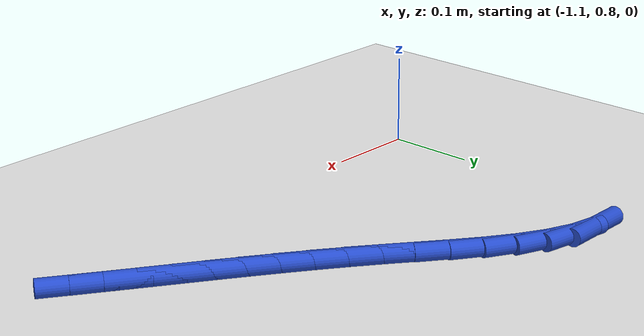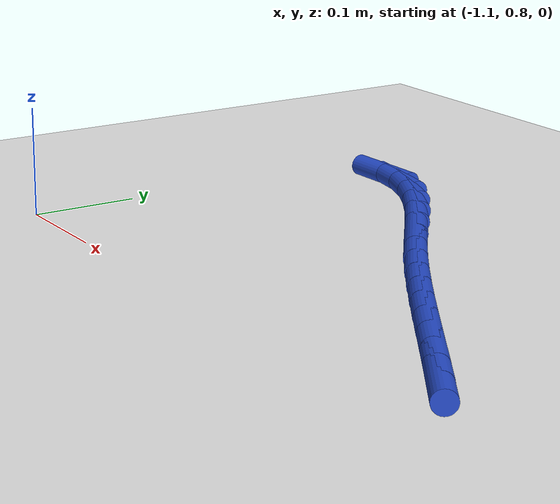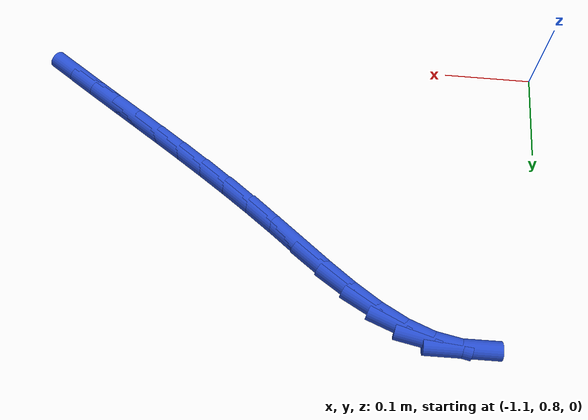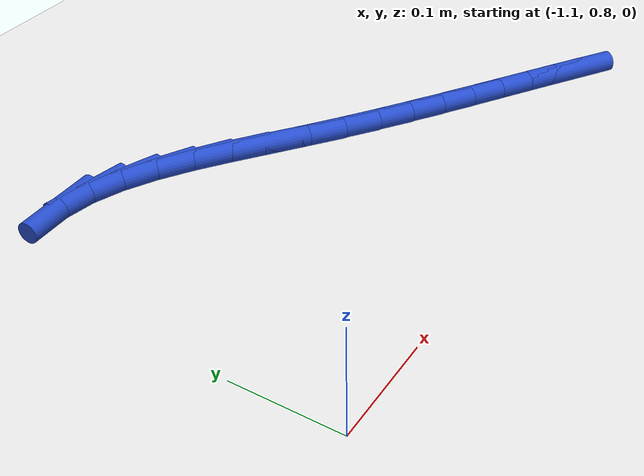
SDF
<sdf version="1.6">
 <world name="default">
  <model name="ground_plane">
   <static>1</static>
   <link name="link">
    <collision name="collision">
     <geometry><plane><normal>0 0 1</normal><size>100 100</size></plane></geometry>
     <surface><friction><ode><mu>100</mu><mu2>50</mu2></ode></friction></surface>
    </collision>
    <visual name="visual">
     <cast_shadows>0</cast_shadows>
     <geometry><plane><normal>0 0 1</normal><size>100 100</size></plane></geometry>
     <material>
      <script><uri>file://media/materials/scripts/gazebo.material</uri><name>Gazebo/WhiteGlow</name></script>
     </material>
    </visual>
   </link>
  </model>
  <model name="line">
   <link name="link_32">
    <pose>-0.5679391808949069 0.8497699829107975 0.01 0 1.57 -0.58621183312326</pose>
    <collision name="collision">
     <geometry><cylinder><radius>0.01</radius><length>0.08</length></cylinder></geometry>
    </collision>
    <visual name="visual">
     <material>
      <script><name>Gazebo/Blue</name><uri>file://media/materials/scripts/gazebo.material</uri></script>
     </material>
     <geometry><cylinder><radius>0.01</radius><length>0.08</length></cylinder></geometry>
    </visual>
   </link>
   <link name="link_33">
    <pose>-0.5951293443169947 0.8678265103797044 0.01 0 1.57 -0.5802576577408157</pose>
    <collision name="collision">
     <geometry><cylinder><radius>0.01</radius><length>0.08</length></cylinder></geometry>
    </collision>
    <visual name="visual">
     <material>
      <script><name>Gazebo/Blue</name><uri>file://media/materials/scripts/gazebo.material</uri></script>
     </material>
     <geometry><cylinder><radius>0.01</radius><length>0.08</length></cylinder></geometry>
    </visual>
   </link>
   <link name="link_34">
    <pose>-0.6224427130974622 0.8857314278503656 0.01 0 1.57 -0.5780383491943036</pose>
    <collision name="collision">
     <geometry><cylinder><radius>0.01</radius><length>0.08</length></cylinder></geometry>
    </collision>
    <visual name="visual">
     <material>
      <script><name>Gazebo/Blue</name><uri>file://media/materials/scripts/gazebo.material</uri></script>
     </material>
     <geometry><cylinder><radius>0.01</radius><length>0.08</length></cylinder></geometry>
    </visual>
   </link>
   <link name="link_35">
    <pose>-0.6498782531871893 0.9036295062240172 0.01 0 1.57 -0.579536351483204</pose>
    <collision name="collision">
     <geometry><cylinder><radius>0.01</radius><length>0.08</length></cylinder></geometry>
    </collision>
    <visual name="visual">
     <material>
      <script><name>Gazebo/Blue</name><uri>file://media/materials/scripts/gazebo.material</uri></script>
     </material>
     <geometry><cylinder><radius>0.01</radius><length>0.08</length></cylinder></geometry>
    </visual>
   </link>
   <link name="link_36">
    <pose>-0.677434930537056 0.9216655164018948 0.01 0 1.57 -0.584681567155481</pose>
    <collision name="collision">
     <geometry><cylinder><radius>0.01</radius><length>0.08</length></cylinder></geometry>
    </collision>
    <visual name="visual">
     <material>
      <script><name>Gazebo/Blue</name><uri>file://media/materials/scripts/gazebo.material</uri></script>
     </material>
     <geometry><cylinder><radius>0.01</radius><length>0.08</length></cylinder></geometry>
    </visual>
   </link>
   <link name="link_37">
    <pose>-0.7051117110979419 0.9399842292852337 0.01 0 1.57 -0.5933538135637033</pose>
    <collision name="collision">
     <geometry><cylinder><radius>0.01</radius><length>0.08</length></cylinder></geometry>
    </collision>
    <visual name="visual">
     <material>
      <script><name>Gazebo/Blue</name><uri>file://media/materials/scripts/gazebo.material</uri></script>
     </material>
     <geometry><cylinder><radius>0.01</radius><length>0.08</length></cylinder></geometry>
    </visual>
   </link>
   <link name="link_38">
    <pose>-0.7329075608207278 0.9587304157752703 0.01 0 1.57 -0.6053856303098277</pose>
    <collision name="collision">
     <geometry><cylinder><radius>0.01</radius><length>0.08</length></cylinder></geometry>
    </collision>
    <visual name="visual">
     <material>
      <script><name>Gazebo/Blue</name><uri>file://media/materials/scripts/gazebo.material</uri></script>
     </material>
     <geometry><cylinder><radius>0.01</radius><length>0.08</length></cylinder></geometry>
    </visual>
   </link>
   <link name="link_39">
    <pose>-0.7608214456562933 0.9780488467732402 0.01 0 1.57 -0.6205656041561253</pose>
    <collision name="collision">
     <geometry><cylinder><radius>0.01</radius><length>0.08</length></cylinder></geometry>
    </collision>
    <visual name="visual">
     <material>
      <script><name>Gazebo/Blue</name><uri>file://media/materials/scripts/gazebo.material</uri></script>
     </material>
     <geometry><cylinder><radius>0.01</radius><length>0.08</length></cylinder></geometry>
    </visual>
   </link>
   <link name="link_40">
    <pose>-0.7888523315555183 0.9980842931803787 0.01 0 1.57 -0.6386424512458385</pose>
    <collision name="collision">
     <geometry><cylinder><radius>0.01</radius><length>0.08</length></cylinder></geometry>
    </collision>
    <visual name="visual">
     <material>
      <script><name>Gazebo/Blue</name><uri>file://media/materials/scripts/gazebo.material</uri></script>
     </material>
     <geometry><cylinder><radius>0.01</radius><length>0.08</length></cylinder></geometry>
    </visual>
   </link>
   <link name="link_41">
    <pose>-0.816999184469283 1.0189815258979222 0.01 0 1.57 -0.6575045595633787</pose>
    <collision name="collision">
     <geometry><cylinder><radius>0.01</radius><length>0.08</length></cylinder></geometry>
    </collision>
    <visual name="visual">
     <material>
      <script><name>Gazebo/Blue</name><uri>file://media/materials/scripts/gazebo.material</uri></script>
     </material>
     <geometry><cylinder><radius>0.01</radius><length>0.08</length></cylinder></geometry>
    </visual>
   </link>
   <link name="link_42">
    <pose>-0.8452613478158196 1.0408031405037799 0.01 0 1.57 -0.6597538097990658</pose>
    <collision name="collision">
     <geometry><cylinder><radius>0.01</radius><length>0.08</length></cylinder></geometry>
    </collision>
    <visual name="visual">
     <material>
      <script><name>Gazebo/Blue</name><uri>file://media/materials/scripts/gazebo.material</uri></script>
     </material>
     <geometry><cylinder><radius>0.01</radius><length>0.08</length></cylinder></geometry>
    </visual>
   </link>
   <link name="link_43">
    <pose>-0.873641810225049 1.0628181634186311 0.01 0 1.57 -0.6357151832701613</pose>
    <collision name="collision">
     <geometry><cylinder><radius>0.01</radius><length>0.08</length></cylinder></geometry>
    </collision>
    <visual name="visual">
     <material>
      <script><name>Gazebo/Blue</name><uri>file://media/materials/scripts/gazebo.material</uri></script>
     </material>
     <geometry><cylinder><radius>0.01</radius><length>0.08</length></cylinder></geometry>
    </visual>
   </link>
   <link name="link_44">
    <pose>-0.9021456015183954 1.08385124999183 0.01 0 1.57 -0.5827325616523604</pose>
    <collision name="collision">
     <geometry><cylinder><radius>0.01</radius><length>0.08</length></cylinder></geometry>
    </collision>
    <visual name="visual">
     <material>
      <script><name>Gazebo/Blue</name><uri>file://media/materials/scripts/gazebo.material</uri></script>
     </material>
     <geometry><cylinder><radius>0.01</radius><length>0.08</length></cylinder></geometry>
    </visual>
   </link>
   <link name="link_45">
    <pose>-0.9307777739596247 1.1027221698348026 0.01 0 1.57 -0.4950012499214727</pose>
    <collision name="collision">
     <geometry><cylinder><radius>0.01</radius><length>0.08</length></cylinder></geometry>
    </collision>
    <visual name="visual">
     <material>
      <script><name>Gazebo/Blue</name><uri>file://media/materials/scripts/gazebo.material</uri></script>
     </material>
     <geometry><cylinder><radius>0.01</radius><length>0.08</length></cylinder></geometry>
    </visual>
   </link>
   <link name="link_46">
    <pose>-0.9595433798125022 1.1182506925589735 0.01 0 1.57 -0.3638222263117783</pose>
    <collision name="collision">
     <geometry><cylinder><radius>0.01</radius><length>0.08</length></cylinder></geometry>
    </collision>
    <visual name="visual">
     <material>
      <script><name>Gazebo/Blue</name><uri>file://media/materials/scripts/gazebo.material</uri></script>
     </material>
     <geometry><cylinder><radius>0.01</radius><length>0.08</length></cylinder></geometry>
    </visual>
   </link>
   <link name="link_47">
    <pose>-0.9884474713407929 1.1292565877757679 0.01 0 1.57 -0.1816693596775093</pose>
    <collision name="collision">
     <geometry><cylinder><radius>0.01</radius><length>0.08</length></cylinder></geometry>
    </collision>
    <visual name="visual">
     <material>
      <script><name>Gazebo/Blue</name><uri>file://media/materials/scripts/gazebo.material</uri></script>
     </material>
     <geometry><cylinder><radius>0.01</radius><length>0.08</length></cylinder></geometry>
    </visual>
   </link>
   <link name="link_48">
    <pose>-1.0174952653235396 1.1345925133369614 0.01 0 1.57 0.02013924699540519</pose>
    <collision name="collision">
     <geometry><cylinder><radius>0.01</radius><length>0.08</length></cylinder></geometry>
    </collision>
    <visual name="visual">
     <material>
      <script><name>Gazebo/Blue</name><uri>file://media/materials/scripts/gazebo.material</uri></script>
     </material>
     <geometry><cylinder><radius>0.01</radius><length>0.08</length></cylinder></geometry>
    </visual>
   </link>
  </model>
 </world>
</sdf>
